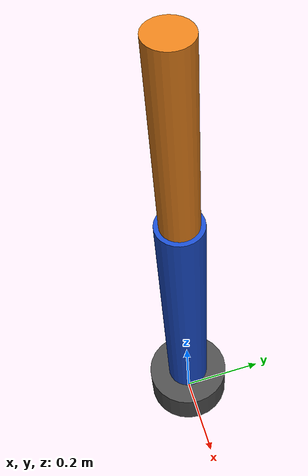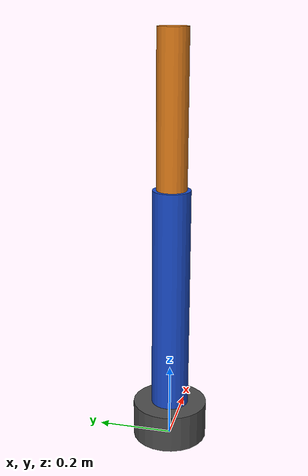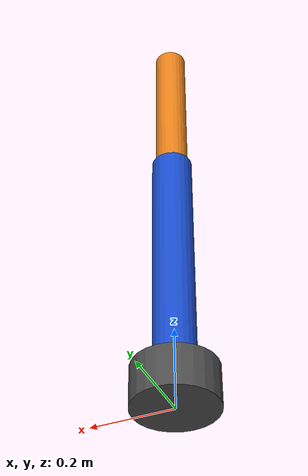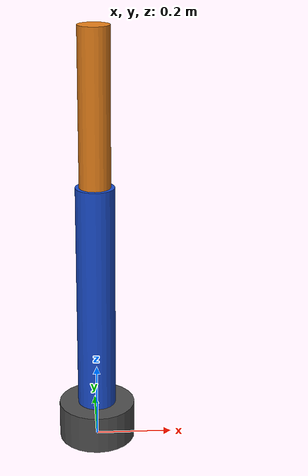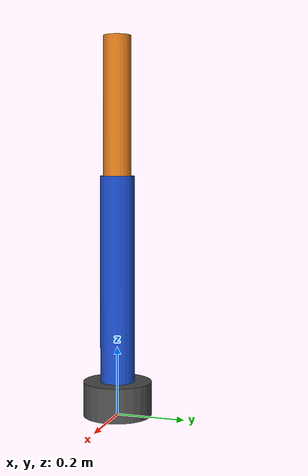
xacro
<?xml version="1.0"?>
<robot name="simple_arm" xmlns:xacro="http://www.ros.org/wiki/xacro">

  <!-- ==================== 参数定义 (PROPERTIES) ==================== -->
  <!-- Base Link 属性 -->
  <xacro:property name="base_r" value="0.1"/>
  <xacro:property name="base_h" value="0.1"/>
  <xacro:property name="base_m" value="5.0"/>

  <!-- Link 1 属性 -->
  <xacro:property name="link1_r" value="0.05"/>
  <xacro:property name="link1_h" value="0.6"/>
  <xacro:property name="link1_m" value="2.0"/>

  <!-- Link 2 属性 -->
  <xacro:property name="link2_r" value="0.04"/>
  <xacro:property name="link2_h" value="0.4"/>
  <xacro:property name="link2_m" value="1.0"/>

  <!-- ==================== 宏定义 (MACROS) ==================== -->
  <!-- 沿 local z 轴向上的实心圆柱惯性张量宏，支持通过 block 参数传入质心位姿 -->
  <xacro:macro name="cylinder_inertial_z" params="m r h *origin">
    <inertial>
      <xacro:insert_block name="origin"/>
      <mass value="${m}"/>
      <inertia
        ixx="${(m/12.0) * (3*r*r + h*h)}" ixy="0.0" ixz="0.0"
        iyy="${(m/12.0) * (3*r*r + h*h)}" iyz="0.0"
        izz="${(m/2.0) * (r*r)}"/>
    </inertial>
  </xacro:macro>

  <!-- ==================== BASE LINK ==================== -->
  <link name="base_link">
    <visual>
      <origin xyz="0 0 ${base_h/2}" rpy="0 0 0"/>
      <geometry>
        <cylinder length="${base_h}" radius="${base_r}"/>
      </geometry>
      <material name="dark_gray">
        <color rgba="0.3 0.3 0.3 1.0"/>
      </material>
    </visual>
    <collision>
      <origin xyz="0 0 ${base_h/2}" rpy="0 0 0"/>
      <geometry>
        <cylinder length="${base_h}" radius="${base_r}"/>
      </geometry>
    </collision>
    <xacro:cylinder_inertial_z m="${base_m}" r="${base_r}" h="${base_h}">
      <origin xyz="0 0 ${base_h/2}" rpy="0 0 0"/>
    </xacro:cylinder_inertial_z>
  </link>

  <!-- ==================== LINK 1 ==================== -->
  <link name="link1">
    <visual>
      <origin xyz="0 0 ${link1_h/2}" rpy="0 0 0"/>
      <geometry>
        <cylinder length="${link1_h}" radius="${link1_r}"/>
      </geometry>
      <material name="blue">
        <color rgba="0.1 0.3 0.8 1.0"/>
      </material>
    </visual>
    <collision>
      <origin xyz="0 0 ${link1_h/2}" rpy="0 0 0"/>
      <geometry>
        <cylinder length="${link1_h}" radius="${link1_r}"/>
      </geometry>
    </collision>
    <xacro:cylinder_inertial_z m="${link1_m}" r="${link1_r}" h="${link1_h}">
      <origin xyz="0 0 ${link1_h/2}" rpy="0 0 0"/>
    </xacro:cylinder_inertial_z>
  </link>

  <!-- ==================== LINK 2 ==================== -->
  <link name="link2">
    <visual>
      <origin xyz="0 0 ${link2_h/2}" rpy="0 0 0"/>
      <geometry>
        <cylinder length="${link2_h}" radius="${link2_r}"/>
      </geometry>
      <material name="orange">
        <color rgba="0.9 0.5 0.1 1.0"/>
      </material>
    </visual>
    <collision>
      <origin xyz="0 0 ${link2_h/2}" rpy="0 0 0"/>
      <geometry>
        <cylinder length="${link2_h}" radius="${link2_r}"/>
      </geometry>
    </collision>
    <xacro:cylinder_inertial_z m="${link2_m}" r="${link2_r}" h="${link2_h}">
      <origin xyz="0 0 ${link2_h/2}" rpy="0 0 0"/>
    </xacro:cylinder_inertial_z>
  </link>
  <!-- ==================== JOINT 1 ==================== -->
  <joint name="joint1" type="revolute">
    <parent link="base_link"/>
    <child link="link1"/>
    <!-- 安装在 base_link 顶部表面 -->
    <origin xyz="0 0 ${base_h}" rpy="0 0 0"/>
    <axis xyz="0 0 1"/>
    <!-- 基础限位配置 -->
    <limit lower="-3.14159" upper="3.14159" effort="100.0" velocity="3.0"/>
  </joint>

  <!-- ==================== JOINT 2 ==================== -->
  <joint name="joint2" type="revolute">
    <parent link="link1"/>
    <child link="link2"/>
    <!-- 安装在 link1 顶部表面 -->
    <origin xyz="0 0 ${link1_h}" rpy="0 0 0"/>
    <axis xyz="0 0 1"/>
    <!-- 基础限位配置 -->
    <limit lower="-3.14159" upper="3.14159" effort="50.0" velocity="3.0"/>
  </joint>

 <!-- ==================== GAZEBO ROS2 CONTROL PLUGIN ==================== -->
<gazebo>
  <plugin filename="libgz_ros2_control-system.so" name="gz_ros2_control::GazeboSimROS2ControlPlugin">
    <parameters>/home/jerichocheng/projects/ros2-industrial-arm-learning/ros2_ws/install/arm_description/share/arm_description/config/arm_controllers.yaml</parameters>
  </plugin>
</gazebo>

 <!-- ==================== ROS 2 CONTROL ==================== -->
  <ros2_control name="GazeboSystem" type="system">
    <hardware>
      <plugin>gz_ros2_control/GazeboSimSystem</plugin>
    </hardware>

    <!-- Joint 1 接口 -->
    <joint name="joint1">
      <command_interface name="position">
        <param name="min">-3.14159</param>
        <param name="max">3.14159</param>
      </command_interface>
      <state_interface name="position"/>
      <state_interface name="velocity"/>
    </joint>

    <!-- Joint 2 接口 -->
    <joint name="joint2">
      <command_interface name="position">
        <param name="min">-3.14159</param>
        <param name="max">3.14159</param>
      </command_interface>
      <state_interface name="position"/>
      <state_interface name="velocity"/>
    </joint>
  </ros2_control>

</robot>
